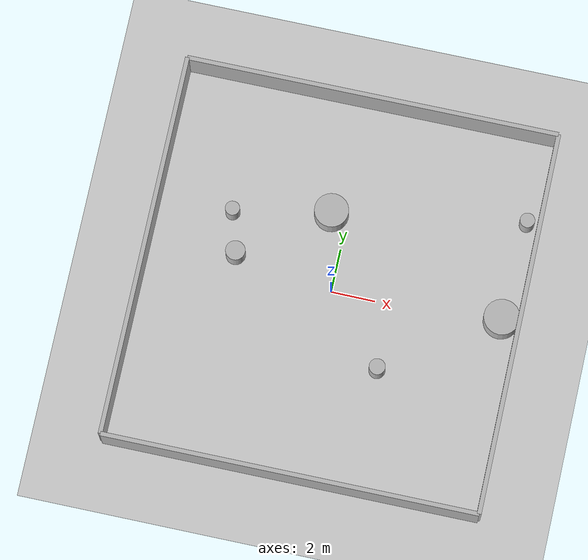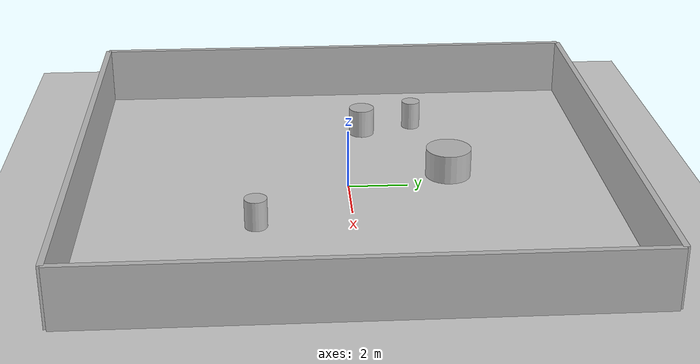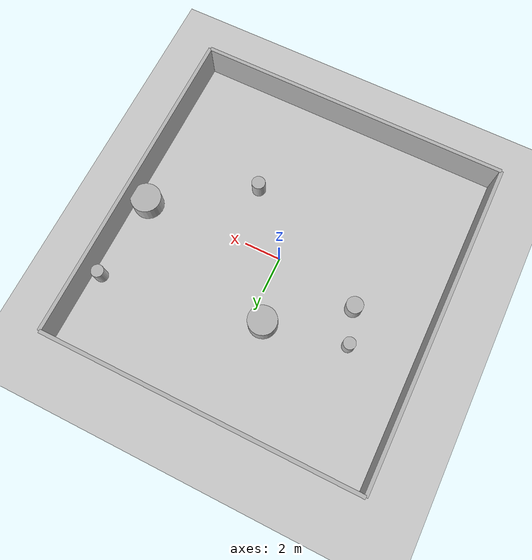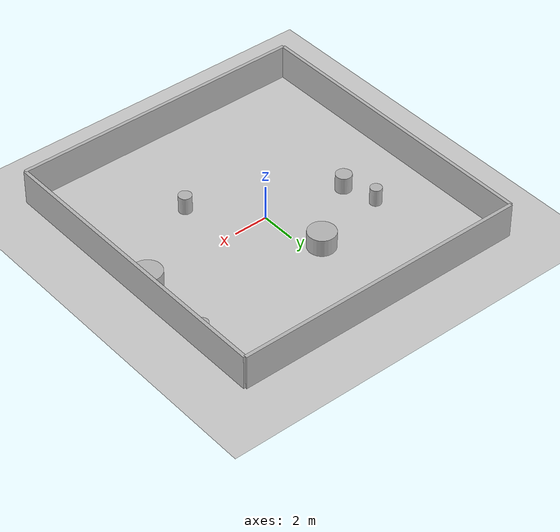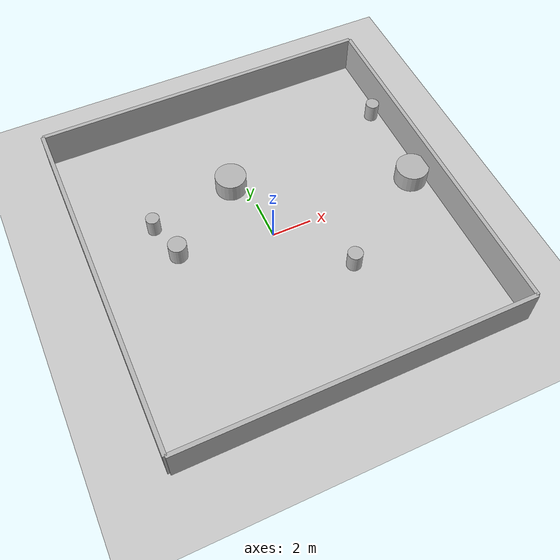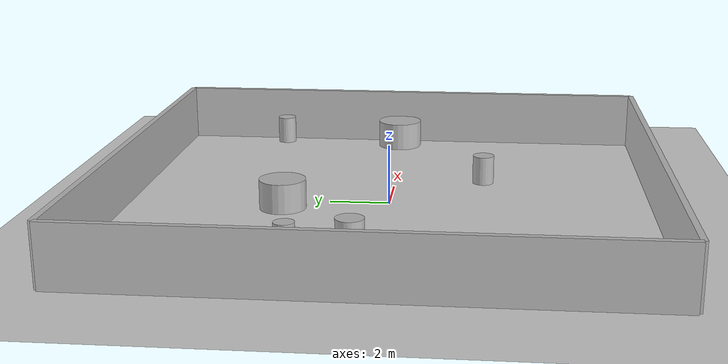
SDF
<?xml version="1.0"?>
<sdf version="1.6">
  <world name="env_64">

    <include><uri>model://ground_plane</uri></include>
    <include><uri>model://sun</uri></include>

    <!-- WALLS -->
    <model name="wall_north"><static>true</static><pose>0 8.813860673975576 1 0 0 0</pose>
      <link name="link"><collision name="collision">
        <geometry><box><size>17.10703907393135 0.2 2</size></box></geometry>
      </collision><visual name="visual">
        <geometry><box><size>17.10703907393135 0.2 2</size></box></geometry>
      </visual></link>
    </model>

    <model name="wall_south"><static>true</static><pose>0 -8.813860673975576 1 0 0 0</pose>
      <link name="link"><collision name="collision">
        <geometry><box><size>17.10703907393135 0.2 2</size></box></geometry>
      </collision><visual name="visual">
        <geometry><box><size>17.10703907393135 0.2 2</size></box></geometry>
      </visual></link>
    </model>

    <model name="wall_east"><static>true</static><pose>8.553519536965675 0 1 0 0 1.57</pose>
      <link name="link"><collision name="collision">
        <geometry><box><size>17.62772134795115 0.2 2</size></box></geometry>
      </collision><visual name="visual">
        <geometry><box><size>17.62772134795115 0.2 2</size></box></geometry>
      </visual></link>
    </model>

    <model name="wall_west"><static>true</static><pose>-8.553519536965675 0 1 0 0 1.57</pose>
      <link name="link"><collision name="collision">
        <geometry><box><size>17.62772134795115 0.2 2</size></box></geometry>
      </collision><visual name="visual">
        <geometry><box><size>17.62772134795115 0.2 2</size></box></geometry>
      </visual></link>
    </model>

    <!-- SENSOR -->

    <model name="lidar_sensor">
      <static>true</static>
      <pose>-6.048725924706229 -2.8447124217274498 0.4 0 0 0</pose>
      <link name="link">
        <sensor name="lidar" type="ray">
          <pose>0 0 0 0 0 0</pose>
          <visualize>true</visualize>
          <always_on>true</always_on>
          <update_rate>10</update_rate>
          <ray>
            <scan><horizontal>
              <samples>90</samples>
              <resolution>1</resolution>
              <min_angle>-3.14159</min_angle>
              <max_angle>3.14159</max_angle>
            </horizontal></scan>
            <range><min>0.15</min><max>20.0</max><resolution>0.01</resolution></range>
          </ray>
          <plugin name="lidar_plugin" filename="liblidar_plugin.so"/>
        </sensor>
      </link>
    </model>

    <!-- OBSTACLES -->

    <model name="obstacle_0">
      <static>true</static>
      <pose>-5.126339646791668 2.6392683131606134 0.5 0 0 0</pose>
      <link name="link">
        <collision name="collision">
          <geometry><cylinder><radius>0.33</radius><length>1.0</length></cylinder></geometry>
        </collision>
        <visual name="visual">
          <geometry><cylinder><radius>0.33</radius><length>1.0</length></cylinder></geometry>
        </visual>
      </link>
    </model>

    <model name="obstacle_1">
      <static>true</static>
      <pose>7.747655789342332 0.2794919163117342 0.5 0 0 0</pose>
      <link name="link">
        <collision name="collision">
          <geometry><cylinder><radius>0.82</radius><length>1.0</length></cylinder></geometry>
        </collision>
        <visual name="visual">
          <geometry><cylinder><radius>0.82</radius><length>1.0</length></cylinder></geometry>
        </visual>
      </link>
    </model>

    <model name="obstacle_2">
      <static>true</static>
      <pose>-4.58081455462126 0.7610041415653264 0.5 0 0 0</pose>
      <link name="link">
        <collision name="collision">
          <geometry><cylinder><radius>0.45</radius><length>1.0</length></cylinder></geometry>
        </collision>
        <visual name="visual">
          <geometry><cylinder><radius>0.45</radius><length>1.0</length></cylinder></geometry>
        </visual>
      </link>
    </model>

    <model name="obstacle_3">
      <static>true</static>
      <pose>-0.7423039276221779 3.4820136625752482 0.5 0 0 0</pose>
      <link name="link">
        <collision name="collision">
          <geometry><cylinder><radius>0.78</radius><length>1.0</length></cylinder></geometry>
        </collision>
        <visual name="visual">
          <geometry><cylinder><radius>0.78</radius><length>1.0</length></cylinder></geometry>
        </visual>
      </link>
    </model>

    <model name="obstacle_4">
      <static>true</static>
      <pose>7.979461286543961 4.8776567544705856 0.5 0 0 0</pose>
      <link name="link">
        <collision name="collision">
          <geometry><cylinder><radius>0.34</radius><length>1.0</length></cylinder></geometry>
        </collision>
        <visual name="visual">
          <geometry><cylinder><radius>0.34</radius><length>1.0</length></cylinder></geometry>
        </visual>
      </link>
    </model>

    <model name="obstacle_5">
      <static>true</static>
      <pose>2.756931154066704 -3.1062398337139134 0.5 0 0 0</pose>
      <link name="link">
        <collision name="collision">
          <geometry><cylinder><radius>0.37</radius><length>1.0</length></cylinder></geometry>
        </collision>
        <visual name="visual">
          <geometry><cylinder><radius>0.37</radius><length>1.0</length></cylinder></geometry>
        </visual>
      </link>
    </model>

  </world>
</sdf>
